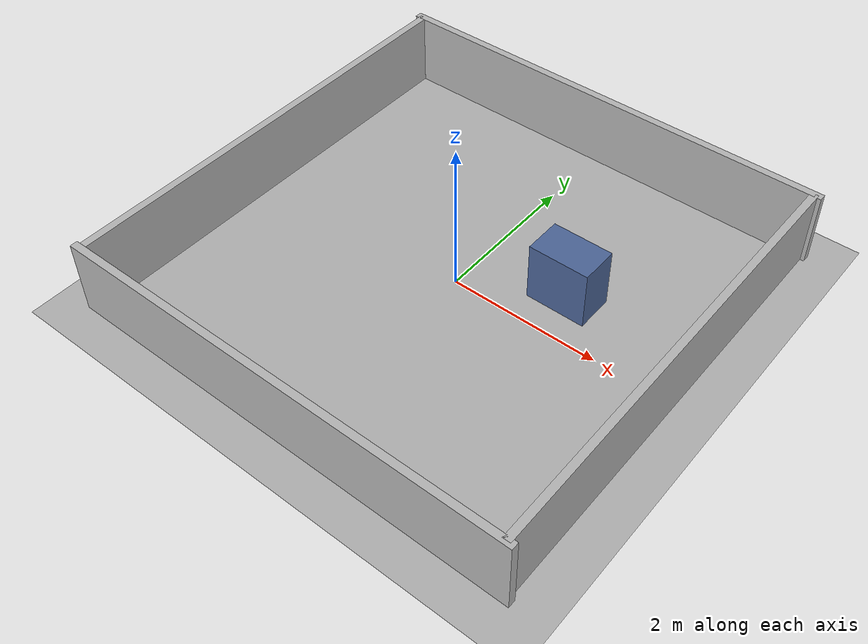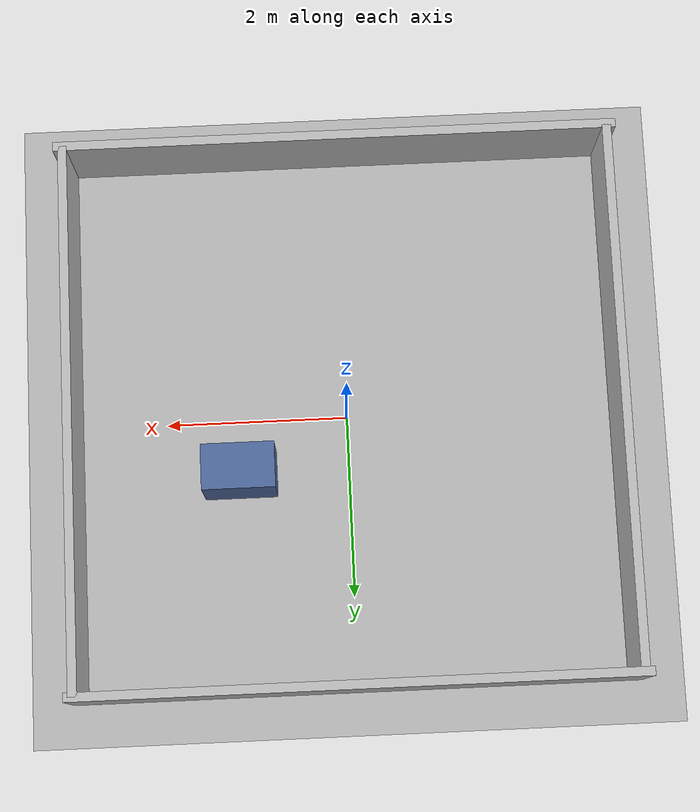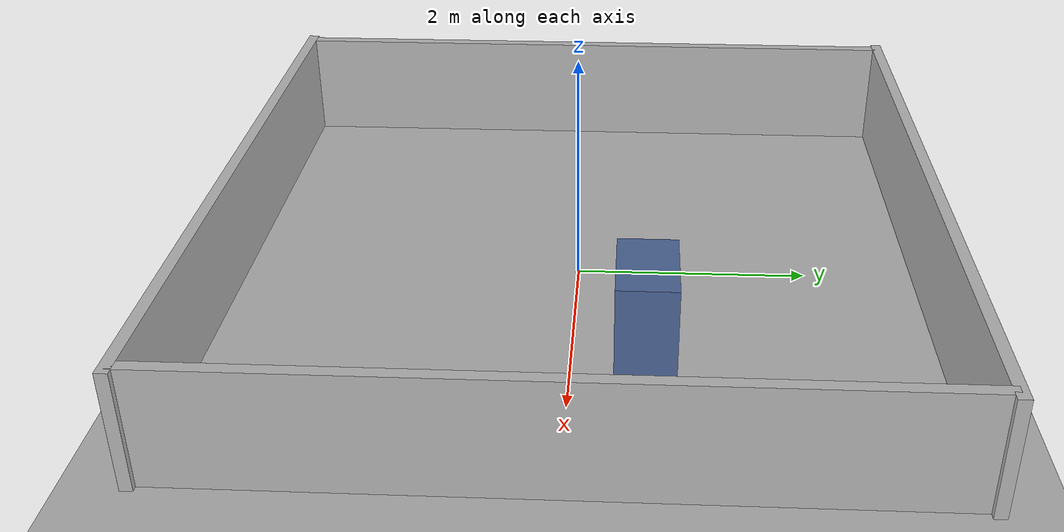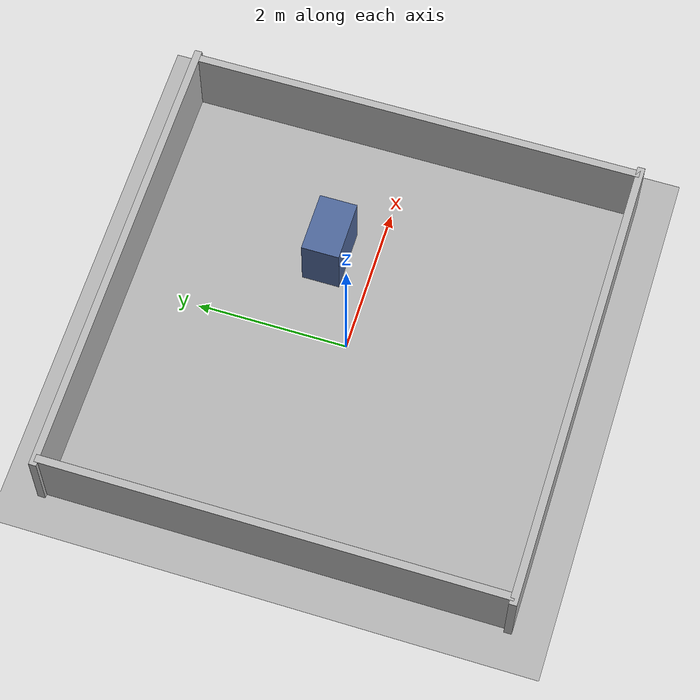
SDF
<?xml version="1.0"?>
<sdf version="1.9"><world name="learning_room">
  <physics name="physics" type="ignored"><max_step_size>0.001</max_step_size><real_time_factor>1.0</real_time_factor></physics>
  <plugin filename="gz-sim-physics-system" name="gz::sim::systems::Physics"/>
  <plugin filename="gz-sim-user-commands-system" name="gz::sim::systems::UserCommands"/>
  <plugin filename="gz-sim-scene-broadcaster-system" name="gz::sim::systems::SceneBroadcaster"/>
  <plugin filename="gz-sim-sensors-system" name="gz::sim::systems::Sensors"><render_engine>ogre2</render_engine></plugin>
  <plugin filename="gz-sim-imu-system" name="gz::sim::systems::Imu"/>
  <gravity>0 0 -9.81</gravity>
  <light name="sun" type="directional"><pose>0 0 8 0 0 0</pose><diffuse>0.9 0.9 0.9 1</diffuse><specular>0.2 0.2 0.2 1</specular><direction>-0.5 0.2 -1</direction><cast_shadows>true</cast_shadows></light>
  <model name="ground"><static>true</static><link name="link"><collision name="collision"><geometry><plane><normal>0 0 1</normal><size>20 20</size></plane></geometry></collision><visual name="visual"><geometry><plane><normal>0 0 1</normal><size>20 20</size></plane></geometry><material><ambient>0.7 0.7 0.7 1</ambient><diffuse>0.7 0.7 0.7 1</diffuse></material></visual></link></model>
  <model name="north_wall"><static>true</static><pose>0 3 0.5 0 0 0</pose><link name="link"><collision name="collision"><geometry><box><size>6.2 0.1 1</size></box></geometry></collision><visual name="visual"><geometry><box><size>6.2 0.1 1</size></box></geometry></visual></link></model>
  <model name="south_wall"><static>true</static><pose>0 -3 0.5 0 0 0</pose><link name="link"><collision name="collision"><geometry><box><size>6.2 0.1 1</size></box></geometry></collision><visual name="visual"><geometry><box><size>6.2 0.1 1</size></box></geometry></visual></link></model>
  <model name="east_wall"><static>true</static><pose>3 0 0.5 0 0 0</pose><link name="link"><collision name="collision"><geometry><box><size>0.1 6 1</size></box></geometry></collision><visual name="visual"><geometry><box><size>0.1 6 1</size></box></geometry></visual></link></model>
  <model name="west_wall"><static>true</static><pose>-3 0 0.5 0 0 0</pose><link name="link"><collision name="collision"><geometry><box><size>0.1 6 1</size></box></geometry></collision><visual name="visual"><geometry><box><size>0.1 6 1</size></box></geometry></visual></link></model>
  <model name="shelf"><static>true</static><pose>1.2 0.6 0.4 0 0 0</pose><link name="link"><collision name="collision"><geometry><box><size>0.8 0.5 0.8</size></box></geometry></collision><visual name="visual"><geometry><box><size>0.8 0.5 0.8</size></box></geometry><material><ambient>0.3 0.4 0.6 1</ambient><diffuse>0.3 0.4 0.6 1</diffuse></material></visual></link></model>
</world></sdf>
